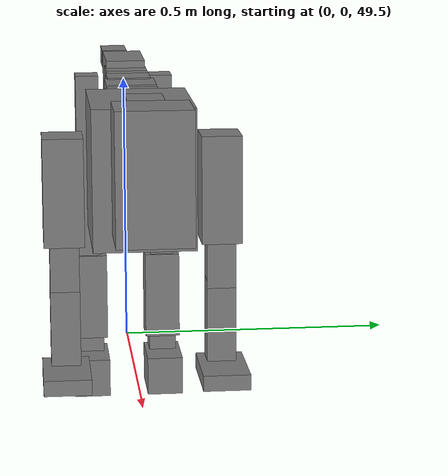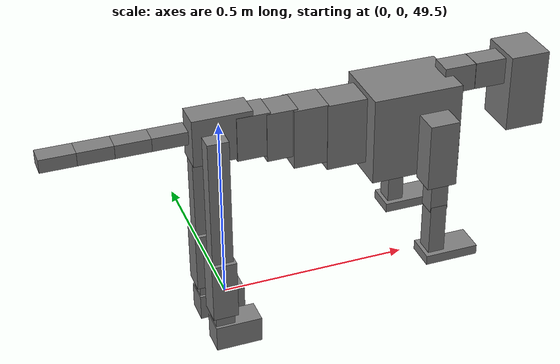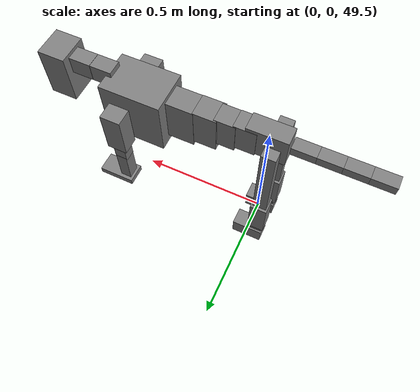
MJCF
<mujoco model="dog">

    <default>
        <joint armature="0.02" stiffness="1" damping="0.2" limited="true"/>
        <geom condim="3" friction="1 0.05 0.05" margin="0.01"/>
        <motor ctrllimited="true" ctrlrange="-1.0 1.0" forcelimited="true" gear="50"/>
    </default>

    <compiler inertiafromgeom="true" angle="radian"/>

    <option timestep="0.016" iterations="50" tolerance="1e-10" solver="Newton" jacobian="dense" cone="pyramidal"/>

    <size nconmax="20000" njmax="60000" nstack="5000000"/>
    <visual>
        <map force="0.1" zfar="30"/>
        <rgba haze="0.15 0.25 0.35 1"/>
        <quality shadowsize="2048"/>
        <global offwidth="800" offheight="800"/>
    </visual>

    <asset>
        <texture type="skybox" builtin="gradient" rgb1="0.3 0.5 0.7" rgb2="0 0 0" width="512" height="512"/>
        <texture name="texplane" type="2d" builtin="checker" rgb1=".2 .3 .4" rgb2=".1 0.15 0.2" width="512" height="512"
                 mark="cross" markrgb=".8 .8 .8"/>
        <texture name="texgeom" type="cube" builtin="flat" mark="cross" width="127" height="1278" rgb1="0.8 0.6 0.4"
                 rgb2="0.8 0.6 0.4" markrgb="1 1 1" random="0.01"/>

        <material name="matplane" reflectance="0.3" texture="texplane" texrepeat="1 1" texuniform="true"/>
        <material name="matgeom" texture="texgeom" texuniform="true" rgba="0.8 0.6 .4 1"/>
    </asset>

    <worldbody>
        <geom name="floor" pos="0 0 0" size="0 0 .25" type="plane" material="matplane" condim="3"/>

        <light directional="false" diffuse=".2 .2 .2" specular="0 0 0" pos="0 0 5" dir="0 0 -1" castshadow="false"/>
        <light mode="targetbodycom" target="torso" directional="false" diffuse=".8 .8 .8" specular="0.3 0.3 0.3"
               pos="0 0 4.0" dir="0 0 -1"/>

        <body name="root" pos="0 0 50">
            <freejoint name="root_1"/>
            <geom type="box" pos="0 0 -0.02" size="0.0774  0.0358  0.063" density="2030"/>

            <body name="spine1" pos="0.054 0 0">
                <joint name="spine1_y" axis="0 1 0" range="0 0.7" limited="true"/>
                <geom type="box" pos="0.02375 0 -0.03" size="0.04375  0.0375  0.05985" density="2030"/>

                <body name="spine2" pos="0.0612 0 0">
                    <joint name="spine2_y" axis="0 1 0" range="-0.15 0.15" limited="true"/>
                    <geom type="box" pos="0.03555  0  -0.04" size="0.04055  0.039  0.06615" density="2030"/>

                    <body name="spine3" pos="0.0730 0 0">
                        <joint name="spine3_y" axis="0 1 0" range="-0.15 0.15" limited="true"/>
                        <geom type="box" pos="0.03555  0  -0.057" size="0.04555  0.0445  0.081" density="2030"/>

                        <body name="spine4" pos="0.0780 0 0">
                            <joint name="spine4_y" axis="0 1 0" range="-0.15 0.15" limited="true"/>
                            <geom type="box" pos="0.05265  0  -0.07" size="0.05265  0.045  0.09135" density="2030"/>

                            <body name="torso" pos="0.1082 0 0">
                                <joint name="torso_y" axis="0 1 0" range="-0.15 0.15" limited="true"/>
                                <geom type="box" pos="0.11925  0  -0.085" size="0.11925  0.085  0.11745"
                                      density="2030"/>

                                <body name="neck1" pos="0.2160  0   0.0180">
                                    <joint name="neck1_y" axis="0 1 0" range="-1.2  -1" limited="true"/>
                                    <geom type="box" pos="0.0423  0  0" size="0.0423  0.03  0.036" density="2325"/>

                                    <body name="neck2" pos="0.0853  0  0">
                                        <joint name="neck2_y" axis="0 1 0" range="0.1  0" limited="true"/>
                                        <geom type="box" pos="0.0423  0  0" size="0.0423  0.03  0.036" density="2325"/>

                                        <body name="head" pos="0.0853  0  0">
                                            <joint name="head_y" axis="0 1 0" range="-0.3  -0.2" limited="true"/>
                                            <geom type="box" pos="0.0531  0  -0.055" size="0.0531  0.06  0.1044"
                                                  density="4030"/>

                                        </body>
                                    </body>
                                </body>

                                <body name="front_shoulder" pos="0.156  0   -0.0480">
                                    <joint name="front_shoulder_y" axis="0 1 0" range="-1 1.5" limited="true"/>
                                    <geom type="box" pos="0 0.13 -0.0637" size="0.0391  0.0335  0.0903" density="1158"/>
                                    <geom type="box" pos="0 -0.13 -0.0637" size="0.0391  0.0335  0.0903"
                                          density="1158"/>

                                    <body name="front_elbow" pos="0  0  -0.1274">
                                        <joint name="front_elbow_y" axis="0 1 0" range="-2 0" limited="true"/>
                                        <geom type="box" pos="0 0.13 -0.0524" size="0.0235  0.0241  0.0524"
                                              density="1081"/>
                                        <geom type="box" pos="0 -0.13 -0.0524" size="0.0235  0.0241  0.0524"
                                              density="1081"/>

                                        <body name="front_wrist" pos="0  0  -0.1047">
                                            <joint name="front_wrist_y" axis="0 1 0" range="-0.2 0" limited="true"/>
                                            <geom type="box" pos="0 0.13 -0.0705" size="0.0220  0.0245  0.0837"
                                                  density="1664"/>
                                            <geom type="box" pos="0 -0.13 -0.0705" size="0.0220  0.0245  0.0837"
                                                  density="1664"/>

                                            <body name="front_finger_end" pos="0  0  -0.1411">
                                                <joint name="front_finger_y" axis="0 1 0" range="-0.4 1"
                                                       limited="true"/>
                                                <geom type="box" pos="0.0391  0.13  0.0020"
                                                      size="0.0717  0.0391  0.0130" density="1515"/>
                                                <geom type="box" pos="0.0391  -0.13  0.0020"
                                                      size="0.0717  0.0391  0.0130" density="1515"/>

                                            </body>

                                        </body>
                                    </body>
                                </body>

                            </body>
                        </body>
                    </body>
                </body>
            </body>

            <body name="back_hip" pos="-0.03 0 -0.018">
                <joint name="back_hip_y" axis="0 1 0" range="-1.5 0.3" limited="true"/>
                <geom type="box" pos="0 0.07 -0.1709" size="0.0276  0.0216  0.1937" density="1154"/>
                <geom type="box" pos="0 -0.07 -0.1709" size="0.0276  0.0216  0.1937" density="1154"/>

                <body name="back_knee" pos="0  0  -0.3418">
                    <joint name="back_knee_y" axis="0 1 0" range="0 2.8" limited="true"/>
                    <geom type="box" pos="0 0.07 -0.0661" size="0.0333  0.0328  0.0816" density="1227"/>
                    <geom type="box" pos="0 -0.07 -0.0661" size="0.0333  0.0328  0.0816" density="1227"/>

                    <body name="back_ankle" pos="0  0  -0.1322">
                        <joint name="back_ankle_y" axis="0 1 0" range="-2.2 0" limited="true"/>
                        <geom type="box" pos="0 0.07 -0.0294" size="0.0256  0.0256  0.0406" density="1284"/>
                        <geom type="box" pos="0 -0.07 -0.0294" size="0.0256  0.0256  0.0406" density="1284"/>

                        <body name="back_toe_end" pos="0  0  -0.0587">
                            <joint name="back_toe_y" axis="0 1 0" range="-0.4 1" limited="true"/>
                            <geom type="box" pos="0.0336  0.07  -0.0206" size="0.0616  0.0336  0.0356" density="1515"/>
                            <geom type="box" pos="0.0336  -0.07  -0.0206" size="0.0616  0.0336  0.0356" density="1515"/>

                        </body>
                    </body>
                </body>
            </body>

            <body name="tail1" pos="-0.074 0 -0.006">
                <joint name="tail1_y" axis="0 1 0" range="-0.2 0.2" limited="true"/>
                <geom type="box" pos="-0.0536  0  0" size="0.045  0.025  0.0175" density="1587"/>

                <body name="tail2" pos="-0.09 0 0">
                    <joint name="tail2_y" axis="0 1 0" range="-0.2 0.2" limited="true"/>
                    <geom type="box" pos="-0.0536  0  0" size="0.045  0.025  0.0175" density="1587"/>

                    <body name="tail3" pos="-0.09 0 0">
                        <joint name="tail3_y" axis="0 1 0" range="-0.2 0.2" limited="true"/>
                        <geom type="box" pos="-0.0536  0  0" size="0.045  0.025  0.0175" density="1587"/>

                        <body name="tail4" pos="-0.09 0 0">
                            <joint name="tail4_y" axis="0 1 0" range="-0.2 0.2" limited="true"/>
                            <geom type="box" pos="-0.0536  0  0" size="0.045  0.025  0.0175" density="1587"/>

                        </body>
                    </body>
                </body>
            </body>
        </body>
    </worldbody>

    <actuator>
        <motor joint="spine1_y" forcerange="-150 150     "/>
        <motor joint="spine2_y" forcerange="-150 150     "/>
        <motor joint="spine3_y" forcerange="-150 150     "/>
        <motor joint="spine4_y" forcerange="-150 150     "/>
        <motor joint="torso_y" forcerange="-150 150     "/>
        <motor joint="neck1_y" forcerange="-100 100       "/>
        <motor joint="neck2_y" forcerange="-100 100       "/>
        <motor joint="head_y" forcerange="-150 150       "/>
        <motor joint="front_shoulder_y" forcerange="-140.20 182.83"/>
        <motor joint="front_elbow_y" forcerange="-123.22 151.86"/>
        <motor joint="front_wrist_y" forcerange="-96.52 99.37"/>
        <motor joint="front_finger_y" forcerange="-95.50 72.98"/>
        <motor joint="back_hip_y" forcerange="-216.33 271.79"/>
        <motor joint="back_knee_y" forcerange="-360.45 317.15"/>
        <motor joint="back_angle_y" forcerange="-79.27 231.02"/>
        <motor joint="back_toe_y" forcerange="-96.59 92.24"/>
        <motor joint="tail1_y" forcerange="-50 50     "/>
        <motor joint="tail2_y" forcerange="-50 50     "/>
        <motor joint="tail3_y" forcerange="-50 50     "/>
        <motor joint="tail4_y" forcerange="-50 50     "/>
    </actuator>
</mujoco>
